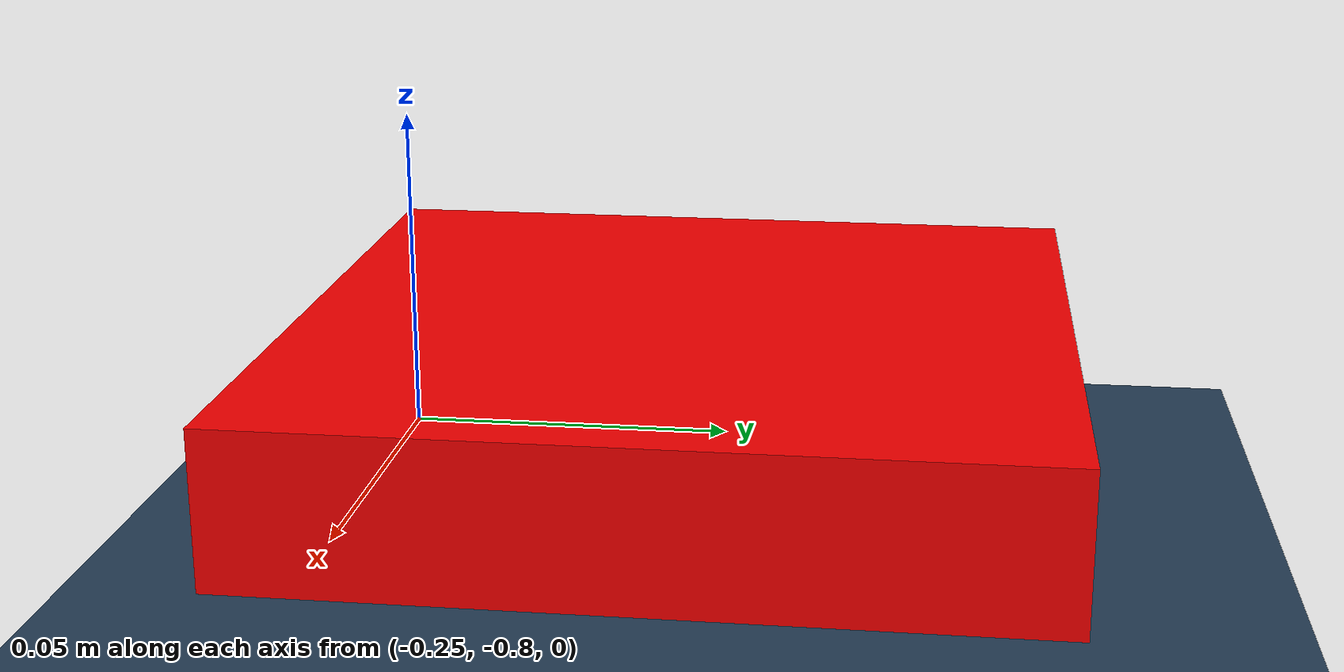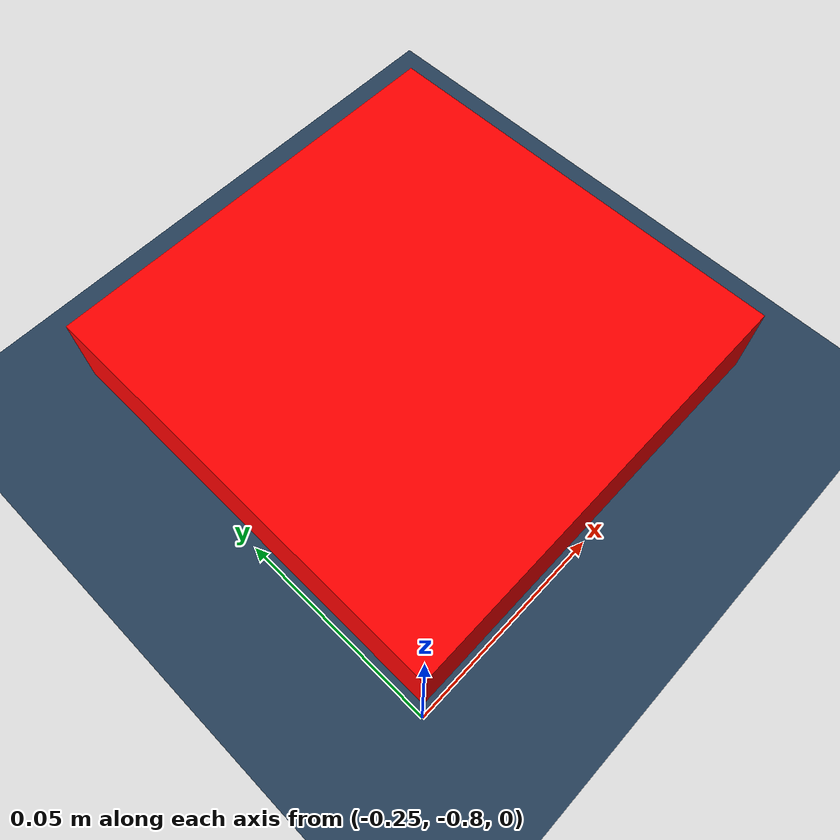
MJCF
<mujoco model="floorworld">

  <statistic center="0.3 0 0.4" extent="0.8"/>

  <visual>
    <headlight diffuse="0.6 0.6 0.6" ambient="0.3 0.3 0.3" specular="0 0 0"/>
    <rgba haze="0.15 0.25 0.35 1"/>
  </visual>

  <asset>
    <texture type="skybox" builtin="gradient" rgb1="0.3 0.5 0.7" rgb2="0 0 0" width="512" height="3072"/>
    <texture type="2d" name="groundplane" builtin="checker" mark="edge" rgb1="0.2 0.3 0.4" rgb2="0.1 0.2 0.3"
      markrgb="0.8 0.8 0.8" width="300" height="300"/>
    <material name="groundplane" texture="groundplane" texuniform="true" texrepeat="5 5" reflectance="0.2"/>
  </asset>

  <worldbody>
    <light pos="0 0 3" dir="0 0 -1" directional="false"/>
    <geom name="floor" size="0 0 .125" type="plane" material="groundplane" conaffinity="15" condim="3"/>

    <body name="red_box" pos="-0.2 -0.75 0.025" quat="0. 0. 1. 0.">
      <freejoint/>
      <geom type="box" size=".05 .05 .01" rgba="1 0 0 1"/>-->
    </body>

  </worldbody>

</mujoco>
